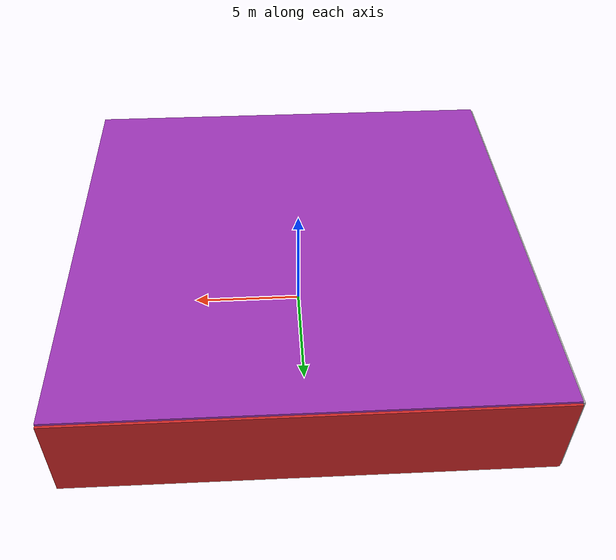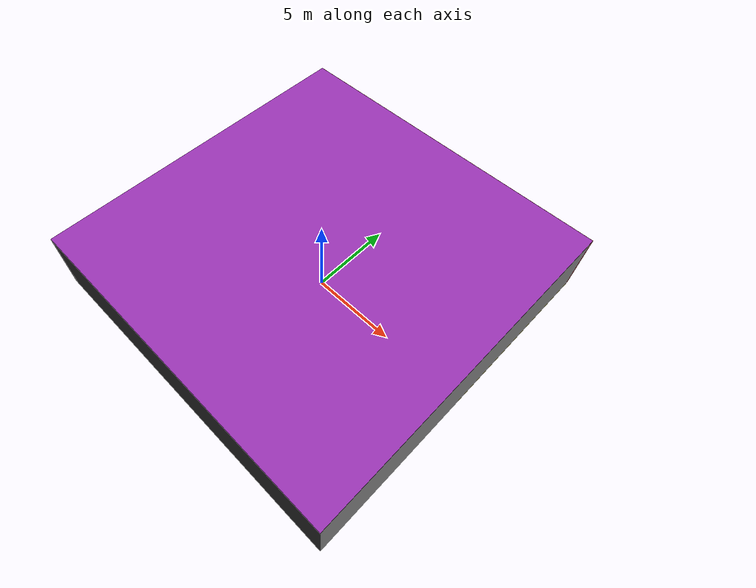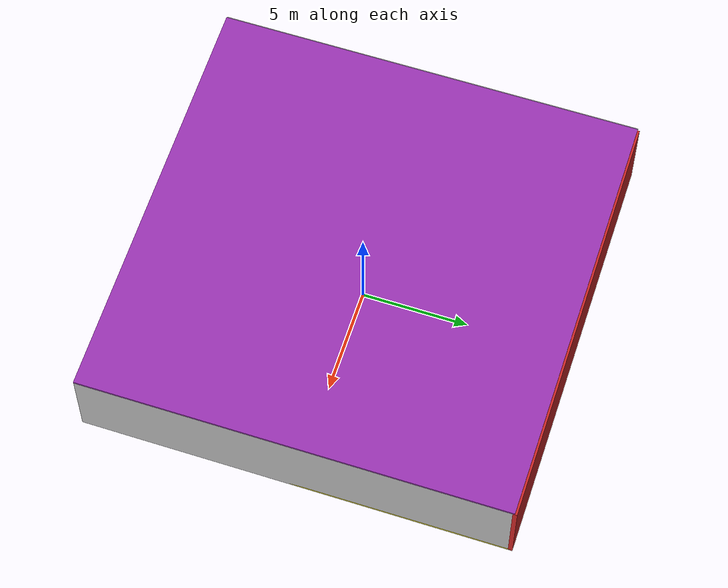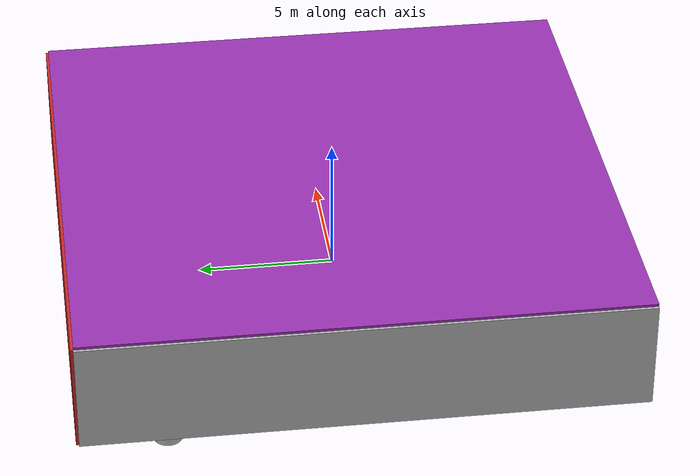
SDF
<sdf version="1.4">
 <world name="default">
  <physics type="ode">
   <max_step_size>0.001</max_step_size>
   <real_time_factor>1</real_time_factor>
   <real_time_update_rate>1000</real_time_update_rate>
   <gravity>0 0 -9.8</gravity>
  </physics>
  <scene><ambient>0.4 0.4 0.4 1</ambient><background>0.7 0.7 0.7 1</background><shadows>1</shadows></scene>
  <model name="Surrounding">
   <static>1</static>
   <link name="Ceiling">
    <collision name="Ceiling_Collision"><geometry><box><size>20 20 0.1</size></box></geometry></collision>
    <visual name="Ceiling_Visual">
     <geometry><box><size>20 20 0.1</size></box></geometry>
     <material>
      <script><uri>file://media/materials/scripts/gazebo.material</uri><name>Gazebo/Purple</name></script>
     </material>
    </visual>
    <pose>0 0 4.05 0 0 0</pose>
   </link>
   <link name="Wall_South">
    <collision name="Wall_South_Collision">
     <geometry><box><size>20 0 4</size></box></geometry>
     <pose>0 0 2 0 -0 0</pose>
    </collision>
    <visual name="Wall_South_Visual">
     <pose>0 0 2 0 -0 0</pose>
     <geometry><box><size>20 0 4</size></box></geometry>
     <material>
      <script><uri>file://media/materials/scripts/gazebo.material</uri><name>Gazebo/FlatBlack</name></script>
     </material>
    </visual>
    <velocity_decay><linear>0</linear><angular>0</angular></velocity_decay>
    <pose>0 -10 0 0 -0 0</pose>
   </link>
   <link name="Wall_East">
    <collision name="Wall_21_Collision">
     <geometry><box><size>20 0 4</size></box></geometry>
     <pose>0 0 2 0 -0 0</pose>
    </collision>
    <visual name="Wall_21_Visual">
     <pose>0 0 2 0 -0 0</pose>
     <geometry><box><size>20 0 4</size></box></geometry>
     <material>
      <script><uri>file://media/materials/scripts/gazebo.material</uri><name>Gazebo/PioneerBody</name></script>
     </material>
    </visual>
    <velocity_decay><linear>0</linear><angular>0</angular></velocity_decay>
    <pose>10 0 0 0 -0 1.5708</pose>
   </link>
   <link name="Wall_North">
    <collision name="Wall_22_Collision">
     <geometry><box><size>20 0.2 4</size></box></geometry>
     <pose>0 0 2 0 -0 0</pose>
    </collision>
    <visual name="Wall_22_Visual">
     <pose>0 0 2 0 -0 0</pose>
     <geometry><box><size>20 0.2 4</size></box></geometry>
     <material>
      <script><uri>file://media/materials/scripts/gazebo.material</uri><name>Gazebo/RedBright</name></script>
     </material>
    </visual>
    <velocity_decay><linear>0</linear><angular>0</angular></velocity_decay>
    <pose>0 10 0 0 -0 0</pose>
   </link>
   <link name="Wall_West">
    <collision name="Wall_23_Collision">
     <geometry><box><size>20 0.2 4</size></box></geometry>
     <pose>0 0 2 0 -0 0</pose>
    </collision>
    <visual name="Wall_23_Visual">
     <pose>0 0 2 0 -0 0</pose>
     <geometry><box><size>20 0.2 4</size></box></geometry>
     <material>
      <script><uri>file://media/materials/scripts/gazebo.material</uri><name>Gazebo/Pioneer2Body</name></script>
     </material>
    </visual>
    <velocity_decay><linear>0</linear><angular>0</angular></velocity_decay>
    <pose>-10 0 0 0 0 -1.5708</pose>
   </link>
   <link name="Ground_link">
    <collision name="collision">
     <pose>0 0 .05 0 -0 0</pose>
     <geometry><box><size>20 20 0.1</size></box></geometry>
    </collision>
    <visual name="visual">
     <pose>0 0 .05 0 -0 0</pose>
     <geometry><box><size>20 20 0.1</size></box></geometry>
     <material>
      <script><uri>file://media/materials/scripts/gazebo.material</uri><name>Gazebo/YellowGlow</name></script>
     </material>
    </visual>
   </link>
   <static>1</static>
  </model>
  <spherical_coordinates>
   <surface_model>EARTH_WGS84</surface_model>
   <latitude_deg>0</latitude_deg>
   <longitude_deg>0</longitude_deg>
   <elevation>0</elevation>
   <heading_deg>0</heading_deg>
  </spherical_coordinates>
  <light name="lightball_0" type="diffuse">
   <diffuse>0.8 0.8 0.8 1</diffuse>
   <specular>0.2 0.2 0.2 1</specular>
   <attenuation>
    <range>100</range>
    <constant>0.7</constant>
    <linear>0.01</linear>
    <quadratic>0.001</quadratic>
   </attenuation>
   <direction>-0.5 0.1 -0.9</direction>
   <pose>-6.41699386291 -2.62722486285 2.97869695185 0 0 0</pose>
  </light>
  <light name="lightball_1" type="diffuse">
   <diffuse>0.8 0.8 0.8 1</diffuse>
   <specular>0.2 0.2 0.2 1</specular>
   <attenuation>
    <range>100</range>
    <constant>0.7</constant>
    <linear>0.01</linear>
    <quadratic>0.001</quadratic>
   </attenuation>
   <direction>-0.5 0.1 -0.9</direction>
   <pose>8.70664857871 9.54635962345 3.71437398951 0 0 0</pose>
  </light>
  <light name="lightball_2" type="diffuse">
   <diffuse>0.8 0.8 0.8 1</diffuse>
   <specular>0.2 0.2 0.2 1</specular>
   <attenuation>
    <range>100</range>
    <constant>0.7</constant>
    <linear>0.01</linear>
    <quadratic>0.001</quadratic>
   </attenuation>
   <direction>-0.5 0.1 -0.9</direction>
   <pose>-1.72748355532 -9.51356462254 2.88703056087 0 0 0</pose>
  </light>
  <light name="lightball_3" type="diffuse">
   <diffuse>0.8 0.8 0.8 1</diffuse>
   <specular>0.2 0.2 0.2 1</specular>
   <attenuation>
    <range>100</range>
    <constant>0.7</constant>
    <linear>0.01</linear>
    <quadratic>0.001</quadratic>
   </attenuation>
   <direction>-0.5 0.1 -0.9</direction>
   <pose>5.13326939357 -7.85327031335 2.21970218221 0 0 0</pose>
  </light>
  <light name="lightball_4" type="diffuse">
   <diffuse>0.8 0.8 0.8 1</diffuse>
   <specular>0.2 0.2 0.2 1</specular>
   <attenuation>
    <range>100</range>
    <constant>0.7</constant>
    <linear>0.01</linear>
    <quadratic>0.001</quadratic>
   </attenuation>
   <direction>-0.5 0.1 -0.9</direction>
   <pose>9.38503867674 -3.76896344919 1.76709647716 0 0 0</pose>
  </light>
  <light name="lightball_5" type="diffuse">
   <diffuse>0.8 0.8 0.8 1</diffuse>
   <specular>0.2 0.2 0.2 1</specular>
   <attenuation>
    <range>100</range>
    <constant>0.7</constant>
    <linear>0.01</linear>
    <quadratic>0.001</quadratic>
   </attenuation>
   <direction>-0.5 0.1 -0.9</direction>
   <pose>-3.8205444218 1.91119107677 1.72027407259 0 0 0</pose>
  </light>
  <include><uri>model://cabinet</uri><pose>-7.6553579418 4.93440048666 0 0 0 0.902141907185</pose></include>
  <include>
   <uri>model://textured_shapes</uri>
   <pose>-7.98499439556 7.61511973907 0 0 0 2.06745019865</pose>
  </include>
  <include><uri>model://table</uri><pose>-5.04499204813 1.87584481552 0 0 0 2.09548726173</pose></include>
  <include><uri>model://cabinet</uri><pose>-4.66280811071 7.00375210006 0 0 0 0.176925338013</pose></include>
  <include><uri>model://table</uri><pose>-0.744540712029 4.83934649004 0 0 0 0.924677338104</pose></include>
  <include>
   <uri>model://textured_shapes</uri>
   <pose>1.30446144465 4.53958166031 0 0 0 2.45905582032</pose>
  </include>
  <include><uri>model://cabinet</uri><pose>4.93539759498 -4.59695781627 0 0 0 1.7353349342</pose></include>
 </world>
</sdf>

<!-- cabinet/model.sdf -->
<sdf version="1.5">
  <model name="cabinet">
    <static>true</static>
    <link name="cabinet_bottom_plate">
      <inertial>
        <pose>0 0 -1 0 0 0</pose>
        <inertia>
          <ixx>2.050000</ixx>
          <ixy>0</ixy>
          <ixz>0</ixz>
          <iyy>2.050000</iyy>
          <iyz>0</iyz>
          <izz>2.050000</izz>
        </inertia>
        <mass>25.000000</mass>
      </inertial>
      <collision name="cabinet_bottom_plate_geom">
        <pose>0 0 0.010000 0 0 0</pose>
        <geometry>
          <box>
            <size>0.450000 0.450000 0.020000</size>
          </box>
        </geometry>
      </collision>
      <visual name="cabinet_bottom_plate_geom_visual">
        <pose>0 0 0.010000 0 0 0</pose>
        <geometry>
          <box>
            <size>0.450000 0.450000 0.020000</size>
          </box>
        </geometry>
        <material>
          <script>
            <uri>model://media/materials/scripts/gazebo.material</uri>
            <name>Gazebo/Wood</name>
          </script>
        </material>
      </visual>
      <collision name="cabinet_bottom_plate_geom_cabinet_back_plate">
        <pose>0.235000 0 0.510000 0 0 0</pose>
        <geometry>
          <box>
            <size>0.020000 0.450000 1.020000</size>
          </box>
        </geometry>
      </collision>
      <visual name="cabinet_bottom_plate_geom_cabinet_back_plate_visual">
        <pose>0.235000 0 0.510000 0 0 0</pose>
        <geometry>
          <box>
            <size>0.020000 0.450000 1.020000</size>
          </box>
        </geometry>
        <material>
          <script>
            <uri>model://media/materials/scripts/gazebo.material</uri>
            <name>Gazebo/Wood</name>
          </script>
        </material>
      </visual>
      <collision name="cabinet_bottom_plate_geom_cabinet_left_plate">
        <pose>0 0.235000 0.510000 0 0 0</pose>
        <geometry>
          <box>
            <size>0.450000 0.020000 1.020000</size>
          </box>
        </geometry>
      </collision>
      <visual name="cabinet_bottom_plate_geom_cabinet_left_plate_visual">
        <pose>0 0.235000 0.510000 0 0 0</pose>
        <geometry>
          <box>
            <size>0.450000 0.020000 1.020000</size>
          </box>
        </geometry>
        <material>
          <script>
            <uri>model://media/materials/scripts/gazebo.material</uri>
            <name>Gazebo/Wood</name>
          </script>
        </material>
      </visual>
      <collision name="cabinet_bottom_plate_geom_cabinet_middle_plate">
        <pose>0 0 0.510000 0 0 0</pose>
        <geometry>
          <box>
            <size>0.450000 0.450000 0.020000</size>
          </box>
        </geometry>
      </collision>
      <visual name="cabinet_bottom_plate_geom_cabinet_middle_plate_visual">
        <pose>0 0 0.510000 0 0 0</pose>
        <geometry>
          <box>
            <size>0.450000 0.450000 0.020000</size>
          </box>
        </geometry>
        <material>
          <script>
            <uri>model://media/materials/scripts/gazebo.material</uri>
            <name>Gazebo/Wood</name>
          </script>
        </material>
      </visual>
      <collision name="cabinet_bottom_plate_geom_cabinet_right_plate">
        <pose>0 -0.235000 0.510000 0 0 0</pose>
        <geometry>
          <box>
            <size>0.450000 0.020000 1.020000</size>
          </box>
        </geometry>
      </collision>
      <visual name="cabinet_bottom_plate_geom_cabinet_right_plate_visual">
        <pose>0 -0.235000 0.510000 0 0 0</pose>
        <geometry>
          <box>
            <size>0.450000 0.020000 1.020000</size>
          </box>
        </geometry>
        <material>
          <script>
            <uri>model://media/materials/scripts/gazebo.material</uri>
            <name>Gazebo/Wood</name>
          </script>
        </material>
      </visual>
      <collision name="cabinet_bottom_plate_geom_cabinet_top_plate">
        <pose>0 0 1.010000 0 0 0</pose>
        <geometry>
          <box>
            <size>0.450000 0.450000 0.020000</size>
          </box>
        </geometry>
      </collision>
      <visual name="cabinet_bottom_plate_geom_cabinet_top_plate_visual">
        <pose>0 0 1.010000 0 0 0</pose>
        <geometry>
          <box>
            <size>0.450000 0.450000 0.020000</size>
          </box>
        </geometry>
        <material>
          <script>
            <uri>model://media/materials/scripts/gazebo.material</uri>
            <name>Gazebo/Wood</name>
          </script>
        </material>
      </visual>
    </link>
  </model>
</sdf>

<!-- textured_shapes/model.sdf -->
<sdf version="1.6">
  <model name="textured_shapes">
    <pose>0 0 0.5 0 0 0</pose>
    <link name="box">
      <pose>0 -1.5 0 0 0 0</pose>
      <collision name="collision">
        <geometry>
          <box>
            <size>1 1 1</size>
          </box>
        </geometry>
      </collision>
      <visual name="visual">
        <geometry>
          <box>
            <size>1 1 1</size>
          </box>
        </geometry>
        <material>
          <script>
            <uri>model://../model_source/models/textured_shapes/materials/scripts</uri>
            <uri>model://../model_source/models/textured_shapes/materials/textures</uri>
            <name>TexturedShape/Squares</name>
          </script>
        </material>
      </visual>
    </link>
    <link name="sphere">
      <collision name="collision">
        <geometry>
          <sphere>
            <radius>0.5</radius>
          </sphere>
        </geometry>
      </collision>
      <visual name="visual">
        <geometry>
          <sphere>
            <radius>0.5</radius>
          </sphere>
        </geometry>
        <material>
          <script>
            <uri>model://../model_source/models/textured_shapes/materials/scripts</uri>
            <uri>model://../model_source/models/textured_shapes/materials/textures</uri>
            <name>TexturedShape/Squares</name>
          </script>
        </material>
      </visual>
    </link>
    <link name="cylinder">
      <pose>0 1.5 0 0 0 0</pose>
      <collision name="collision">
        <geometry>
          <cylinder>
            <radius>0.5</radius>
            <length>1</length>
          </cylinder>
        </geometry>
      </collision>
      <visual name="visual">
        <geometry>
          <cylinder>
            <radius>0.5</radius>
            <length>1</length>
          </cylinder>
        </geometry>
        <material>
          <script>
            <uri>model://../model_source/models/textured_shapes/materials/scripts</uri>
            <uri>model://../model_source/models/textured_shapes/materials/textures</uri>
            <name>TexturedShape/Squares</name>
          </script>
        </material>
      </visual>
    </link>
  </model>
</sdf>

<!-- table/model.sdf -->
<sdf version="1.5">
  <model name="table">
    <static>true</static>
    <link name="link">
      <collision name="surface">
        <pose>0 0 1.0 0 0 0</pose>
        <geometry>
          <box>
            <size>1.5 0.8 0.03</size>
          </box>
        </geometry>
        <surface>
          <friction>
            <ode>
              <mu>0.6</mu>
              <mu2>0.6</mu2>
            </ode>
          </friction>
        </surface>
      </collision>
      <visual name="visual1">
        <pose>0 0 1.0 0 0 0</pose>
        <geometry>
          <box>
            <size>1.5 0.8 0.03</size>
          </box>
        </geometry>
        <material>
          <script>
            <uri>model://media/materials/scripts/gazebo.material</uri>
            <name>Gazebo/Wood</name>
          </script>
        </material>
      </visual>
      <collision name="front_left_leg">
        <pose>0.68 0.38 0.5 0 0 0</pose>
        <geometry>
          <cylinder>
            <radius>0.02</radius>
            <length>1.0</length>
          </cylinder>
        </geometry>
      </collision>
      <visual name="front_left_leg">
        <pose>0.68 0.38 0.5 0 0 0</pose>
        <geometry>
          <cylinder>
            <radius>0.02</radius>
            <length>1.0</length>
          </cylinder>
        </geometry>
        <material>
          <script>
            <uri>model://media/materials/scripts/gazebo.material</uri>
            <name>Gazebo/Grey</name>
          </script>
        </material>
      </visual>
      <collision name="front_right_leg">
        <pose>0.68 -0.38 0.5 0 0 0</pose>
        <geometry>
          <cylinder>
            <radius>0.02</radius>
            <length>1.0</length>
          </cylinder>
        </geometry>
      </collision>
      <visual name="front_right_leg">
        <pose>0.68 -0.38 0.5 0 0 0</pose>
        <geometry>
          <cylinder>
            <radius>0.02</radius>
            <length>1.0</length>
          </cylinder>
        </geometry>
        <material>
          <script>
            <uri>model://media/materials/scripts/gazebo.material</uri>
            <name>Gazebo/Grey</name>
          </script>
        </material>
      </visual>
      <collision name="back_right_leg">
        <pose>-0.68 -0.38 0.5 0 0 0</pose>
        <geometry>
          <cylinder>
            <radius>0.02</radius>
            <length>1.0</length>
          </cylinder>
        </geometry>
      </collision>
      <visual name="back_right_leg">
        <pose>-0.68 -0.38 0.5 0 0 0</pose>
        <geometry>
          <cylinder>
            <radius>0.02</radius>
            <length>1.0</length>
          </cylinder>
        </geometry>
        <material>
          <script>
            <uri>model://media/materials/scripts/gazebo.material</uri>
            <name>Gazebo/Grey</name>
          </script>
        </material>
      </visual>
      <collision name="back_left_leg">
        <pose>-0.68 0.38 0.5 0 0 0</pose>
        <geometry>
          <cylinder>
            <radius>0.02</radius>
            <length>1.0</length>
          </cylinder>
        </geometry>
      </collision>
      <visual name="back_left_leg">
        <pose>-0.68 0.38 0.5 0 0 0</pose>
        <geometry>
          <cylinder>
            <radius>0.02</radius>
            <length>1.0</length>
          </cylinder>
        </geometry>
        <material>
          <script>
            <uri>model://media/materials/scripts/gazebo.material</uri>
            <name>Gazebo/Grey</name>
          </script>
        </material>
      </visual>
    </link>
  </model>
</sdf>
